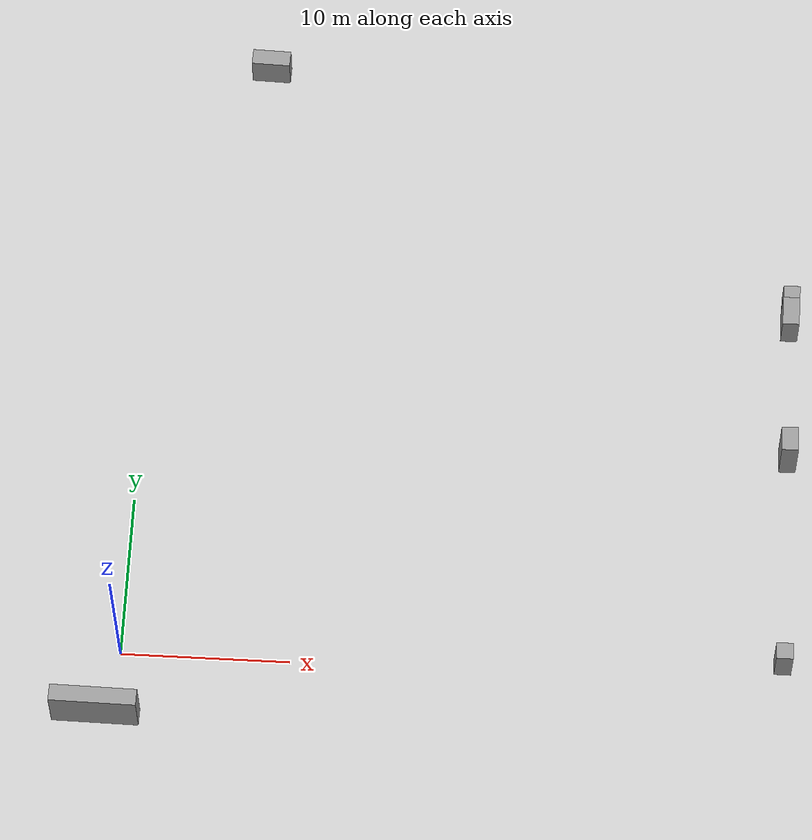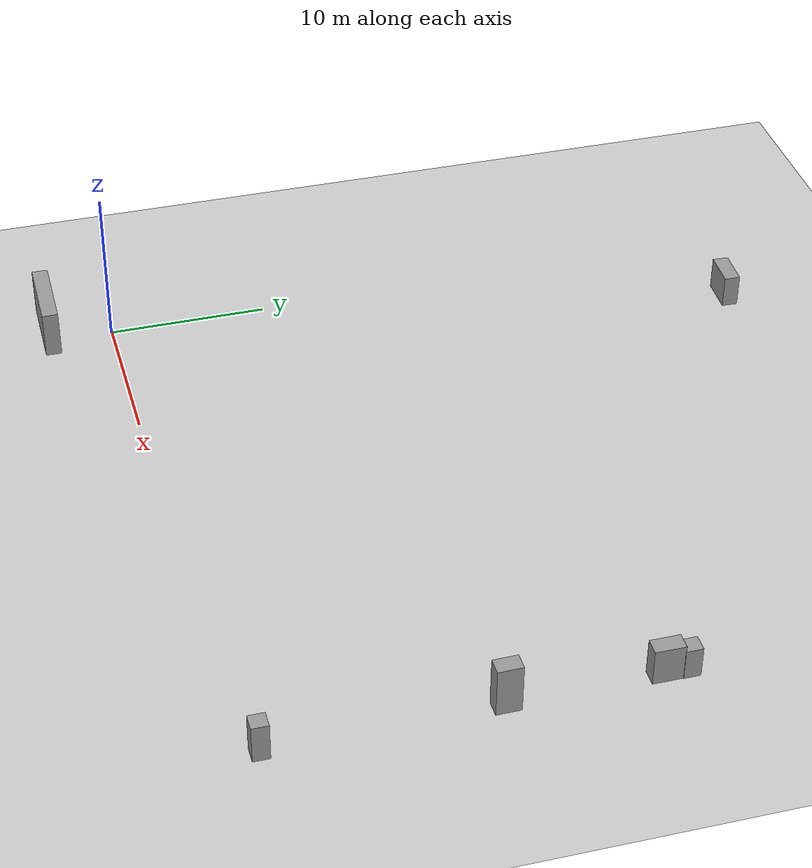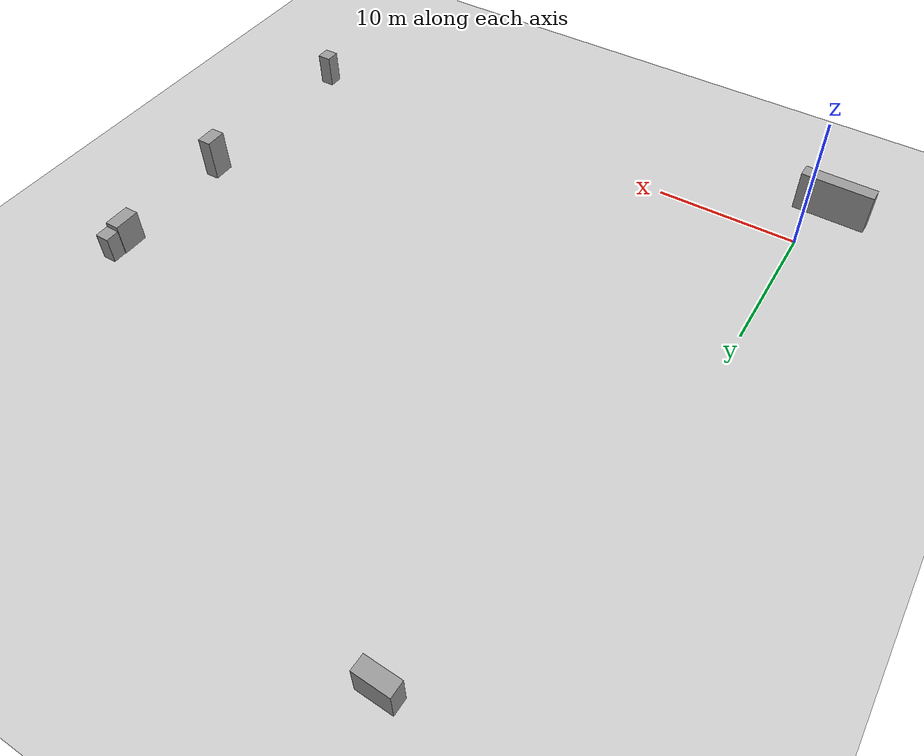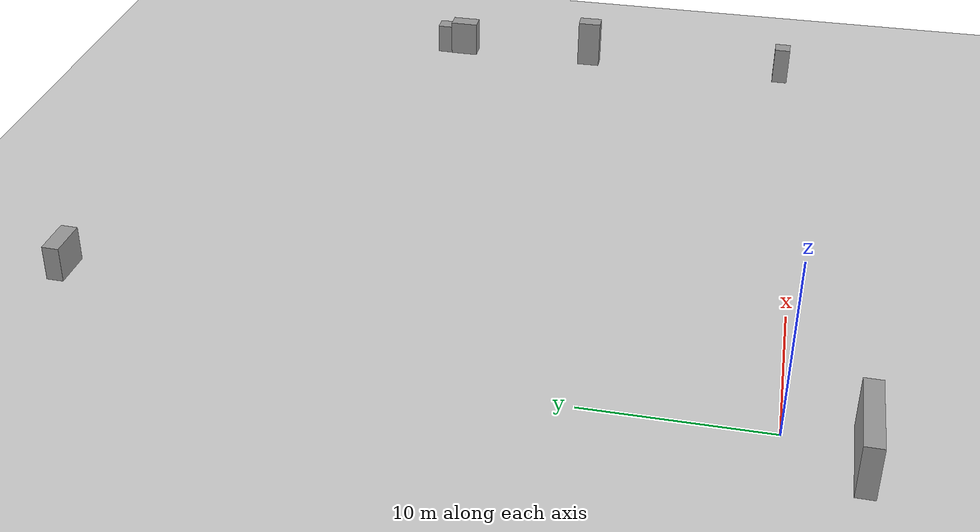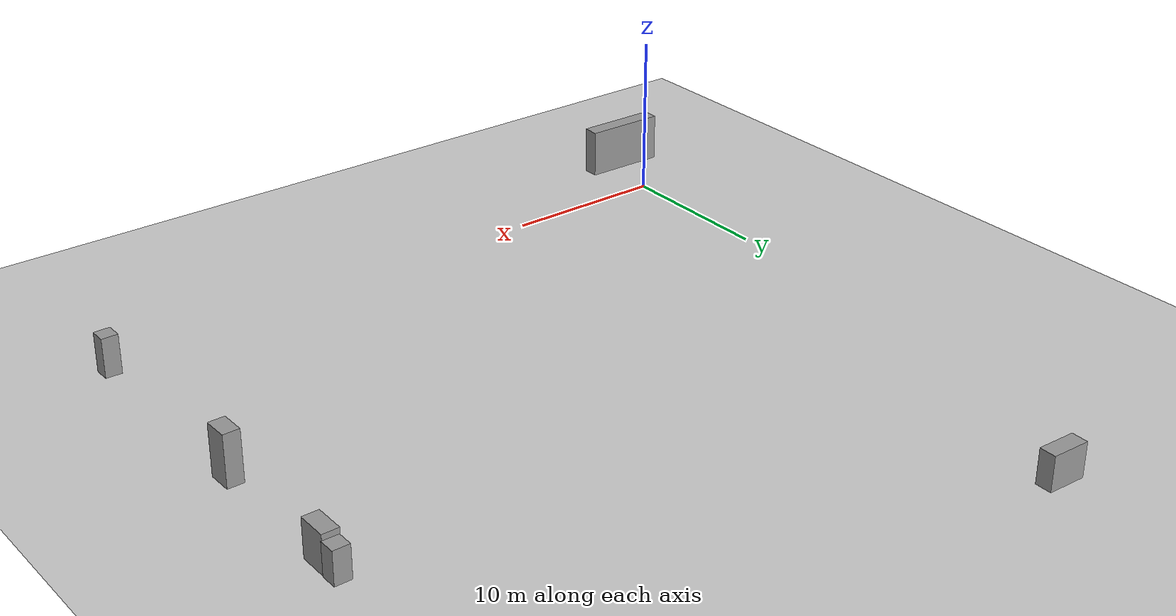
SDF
<sdf version="1.7">
 <world name="default">
  <light name="sun" type="directional">
   <pose>0 0 10 0 -0 0</pose>
   <diffuse>0.8 0.8 0.8 1</diffuse>
   <specular>0.2 0.2 0.2 1</specular>
   <attenuation>
    <range>1000</range>
    <constant>0.9</constant>
    <linear>0.01</linear>
    <quadratic>0.001</quadratic>
   </attenuation>
   <direction>-0.5 0.1 -0.9</direction>
   <spot><inner_angle>0</inner_angle><outer_angle>0</outer_angle><falloff>0</falloff></spot>
  </light>
  <model name="ground_plane">
   <static>1</static>
   <link name="link">
    <collision name="collision">
     <geometry><plane><normal>0 0 1</normal><size>100 100</size></plane></geometry>
     <surface><friction><ode><mu>100</mu><mu2>50</mu2></ode></friction></surface>
    </collision>
    <visual name="visual">
     <cast_shadows>0</cast_shadows>
     <geometry><plane><normal>0 0 1</normal><size>100 100</size></plane></geometry>
     <material>
      <script><uri>file://media/materials/scripts/gazebo.material</uri><name>Gazebo/Grey</name></script>
     </material>
    </visual>
   </link>
  </model>
  <gravity>0 0 -9.8</gravity>
  <magnetic_field>6e-06 2.3e-05 -4.2e-05</magnetic_field>
  <atmosphere type="adiabatic"/>
  <physics type="ode">
   <max_step_size>0.001</max_step_size>
   <real_time_factor>1</real_time_factor>
   <real_time_update_rate>1000</real_time_update_rate>
  </physics>
  <scene><ambient>0.4 0.4 0.4 1</ambient><background>0.7 0.7 0.7 1</background><shadows>1</shadows></scene>
  <spherical_coordinates>
   <surface_model>EARTH_WGS84</surface_model>
   <latitude_deg>0</latitude_deg>
   <longitude_deg>0</longitude_deg>
   <elevation>0</elevation>
   <heading_deg>0</heading_deg>
  </spherical_coordinates>
  <model name="unit_box">
   <pose>-1.14815 -3.93914 1.51872 -3e-06 0.000224 -0.014786</pose>
   <link name="link">
    <inertial>
     <mass>1</mass>
     <inertia>
      <ixx>0.166667</ixx>
      <ixy>0</ixy>
      <ixz>0</ixz>
      <iyy>0.166667</iyy>
      <iyz>0</iyz>
      <izz>0.166667</izz>
     </inertia>
    </inertial>
    <collision name="collision"><geometry><box><size>5.10822 1 3.03854</size></box></geometry></collision>
    <visual name="visual">
     <geometry><box><size>5.10822 1 3.03854</size></box></geometry>
     <material>
      <script><name>Gazebo/Grey</name><uri>file://media/materials/scripts/gazebo.material</uri></script>
     </material>
    </visual>
   </link>
  </model>
  <model name="unit_box_0">
   <pose>38.9781 1.20332 1.22043 2e-06 -2e-06 -0.002879</pose>
   <link name="link">
    <inertial>
     <mass>1</mass>
     <inertia>
      <ixx>0.166667</ixx>
      <ixy>0</ixy>
      <ixz>0</ixz>
      <iyy>0.166667</iyy>
      <iyz>0</iyz>
      <izz>0.166667</izz>
     </inertia>
    </inertial>
    <collision name="collision"><geometry><box><size>1 1 2.44086</size></box></geometry></collision>
    <visual name="visual">
     <geometry><box><size>1 1 2.44086</size></box></geometry>
     <material>
      <script><name>Gazebo/Grey</name><uri>file://media/materials/scripts/gazebo.material</uri></script>
     </material>
    </visual>
   </link>
  </model>
  <model name="unit_box_1">
   <pose>38.9956 14.6774 1.57395 1e-06 -0 0.015454</pose>
   <link name="link">
    <inertial>
     <mass>1</mass>
     <inertia>
      <ixx>0.166667</ixx>
      <ixy>0</ixy>
      <ixz>0</ixz>
      <iyy>0.166667</iyy>
      <iyz>0</iyz>
      <izz>0.166667</izz>
     </inertia>
    </inertial>
    <collision name="collision"><geometry><box><size>1 1.49514 3.1479</size></box></geometry></collision>
    <visual name="visual">
     <geometry><box><size>1 1.49514 3.1479</size></box></geometry>
     <material>
      <script><name>Gazebo/Grey</name><uri>file://media/materials/scripts/gazebo.material</uri></script>
     </material>
    </visual>
   </link>
  </model>
  <model name="unit_box_3">
   <pose>6.23731 39.9461 1.04211 0 0 -0.031842</pose>
   <link name="link">
    <inertial>
     <mass>1</mass>
     <inertia>
      <ixx>0.166667</ixx>
      <ixy>0</ixy>
      <ixz>0</ixz>
      <iyy>0.166667</iyy>
      <iyz>0</iyz>
      <izz>0.166667</izz>
     </inertia>
    </inertial>
    <collision name="collision"><geometry><box><size>2.35085 1 2.11314</size></box></geometry></collision>
    <visual name="visual">
     <geometry><box><size>2.35085 1 2.11314</size></box></geometry>
     <material>
      <script><name>Gazebo/Grey</name><uri>file://media/materials/scripts/gazebo.material</uri></script>
     </material>
    </visual>
   </link>
  </model>
  <model name="unit_box_2">
   <pose>38.9501 23.6967 1.16972 -0 -0 -0.001336</pose>
   <link name="link">
    <inertial>
     <mass>1</mass>
     <inertia>
      <ixx>0.166667</ixx>
      <ixy>0</ixy>
      <ixz>0</ixz>
      <iyy>0.166667</iyy>
      <iyz>0</iyz>
      <izz>0.166667</izz>
     </inertia>
    </inertial>
    <collision name="collision"><geometry><box><size>1 1.8148 2.33944</size></box></geometry></collision>
    <visual name="visual">
     <geometry><box><size>1 1.8148 2.33944</size></box></geometry>
     <material>
      <script><name>Gazebo/Grey</name><uri>file://media/materials/scripts/gazebo.material</uri></script>
     </material>
    </visual>
   </link>
  </model>
  <model name="Untitled">
   <link name="link_0">
    <inertial>
     <mass>1</mass>
     <inertia>
      <ixx>0.166667</ixx>
      <ixy>0</ixy>
      <ixz>0</ixz>
      <iyy>0.166667</iyy>
      <iyz>0</iyz>
      <izz>0.166667</izz>
     </inertia>
    </inertial>
    <pose>-2.3e-05 2e-06 0 0 -0 0</pose>
    <visual name="visual">
     <geometry><box><size>1 1 1.98055</size></box></geometry>
     <material>
      <lighting>1</lighting>
      <script><uri>file://media/materials/scripts/gazebo.material</uri><name>Gazebo/Grey</name></script>
      <shader type="pixel"/>
     </material>
    </visual>
    <collision name="collision">
     <geometry><box><size>1 1 1.98055</size></box></geometry>
     <surface>
      <friction>
       <ode><mu>1</mu><mu2>1</mu2><fdir1>0 0 0</fdir1><slip1>0</slip1><slip2>0</slip2></ode>
       <torsional>
        <coefficient>1</coefficient>
        <patch_radius>0</patch_radius>
        <surface_radius>0</surface_radius>
        <use_patch_radius>1</use_patch_radius>
        <ode><slip>0</slip></ode>
       </torsional>
      </friction>
      <bounce><restitution_coefficient>0</restitution_coefficient><threshold>1e+06</threshold></bounce>
      <contact>
       <collide_without_contact>0</collide_without_contact>
       <collide_without_contact_bitmask>1</collide_without_contact_bitmask>
       <collide_bitmask>1</collide_bitmask>
       <ode>
        <soft_cfm>0</soft_cfm>
        <soft_erp>0.2</soft_erp>
        <kp>1e+13</kp>
        <kd>1</kd>
        <max_vel>0.01</max_vel>
        <min_depth>0</min_depth>
       </ode>
       <bullet>
        <split_impulse>1</split_impulse>
        <split_impulse_penetration_threshold>-0.01</split_impulse_penetration_threshold>
        <soft_cfm>0</soft_cfm>
        <soft_erp>0.2</soft_erp>
        <kp>1e+13</kp>
        <kd>1</kd>
       </bullet>
      </contact>
     </surface>
    </collision>
   </link>
   <static>0</static>
   <pose>38.9877 25.0748 0.996783 0 -0 0</pose>
  </model>
 </world>
</sdf>
